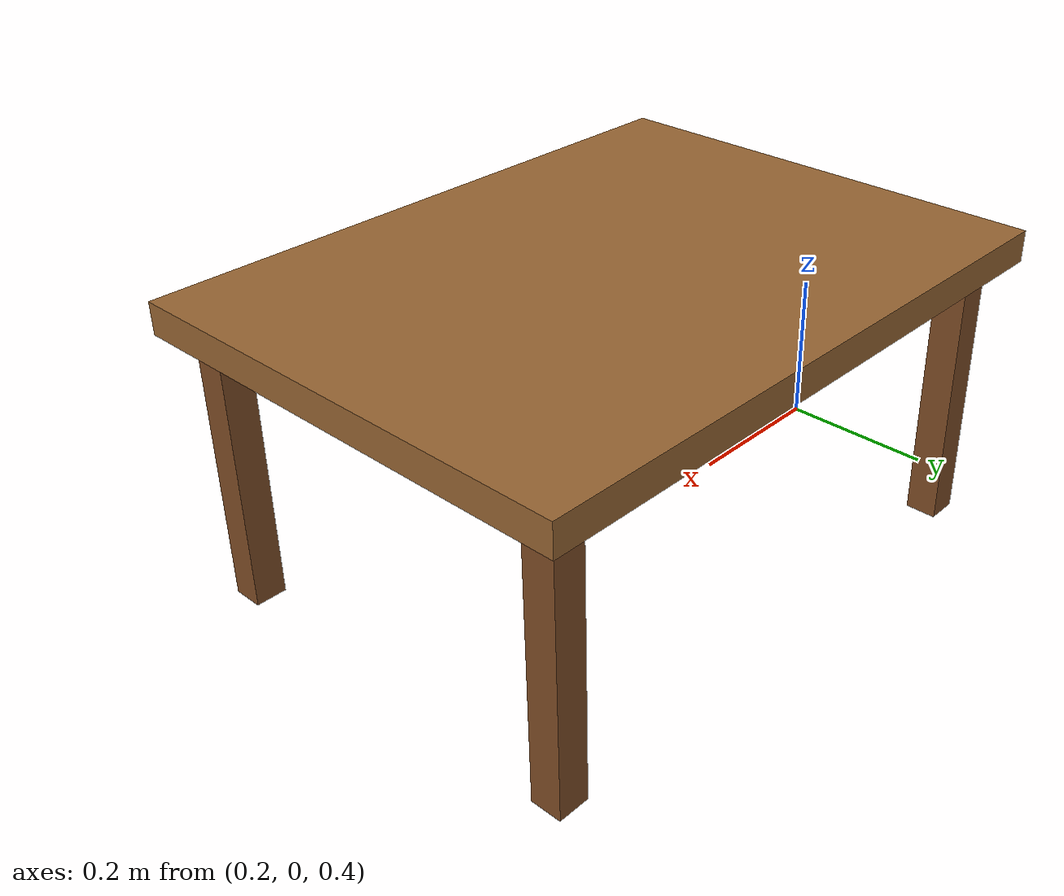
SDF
<?xml version="1.0" ?>
<sdf version="1.6">
  <model name="table">
    <static>true</static>
    <pose>0.6 0.0 0.375 0 0 0</pose>
    <link name="table_link">
      <!-- 桌面 -->
      <visual name="top">
        <pose>0 0 0.37 0 0 0</pose>
        <geometry>
          <box><size>0.8 0.6 0.04</size></box>
        </geometry>
        <material>
          <ambient>0.6 0.4 0.2 1</ambient>
          <diffuse>0.6 0.4 0.2 1</diffuse>
        </material>
      </visual>
      <collision name="top_collision">
        <pose>0 0 0.37 0 0 0</pose>
        <geometry>
          <box><size>0.8 0.6 0.04</size></box>
        </geometry>
      </collision>
      <!-- 桌腿 -->
      <visual name="leg1">
        <pose>-0.35 -0.25 0.175 0 0 0</pose>
        <geometry><box><size>0.04 0.04 0.35</size></box></geometry>
        <material><ambient>0.5 0.3 0.15 1</ambient></material>
      </visual>
      <collision name="leg1_c"><pose>-0.35 -0.25 0.175 0 0 0</pose><geometry><box><size>0.04 0.04 0.35</size></box></geometry></collision>
      <visual name="leg2">
        <pose>0.35 -0.25 0.175 0 0 0</pose>
        <geometry><box><size>0.04 0.04 0.35</size></box></geometry>
        <material><ambient>0.5 0.3 0.15 1</ambient></material>
      </visual>
      <collision name="leg2_c"><pose>0.35 -0.25 0.175 0 0 0</pose><geometry><box><size>0.04 0.04 0.35</size></box></geometry></collision>
      <visual name="leg3">
        <pose>-0.35 0.25 0.175 0 0 0</pose>
        <geometry><box><size>0.04 0.04 0.35</size></box></geometry>
        <material><ambient>0.5 0.3 0.15 1</ambient></material>
      </visual>
      <collision name="leg3_c"><pose>-0.35 0.25 0.175 0 0 0</pose><geometry><box><size>0.04 0.04 0.35</size></box></geometry></collision>
      <visual name="leg4">
        <pose>0.35 0.25 0.175 0 0 0</pose>
        <geometry><box><size>0.04 0.04 0.35</size></box></geometry>
        <material><ambient>0.5 0.3 0.15 1</ambient></material>
      </visual>
      <collision name="leg4_c"><pose>0.35 0.25 0.175 0 0 0</pose><geometry><box><size>0.04 0.04 0.35</size></box></geometry></collision>
    </link>
  </model>
</sdf>
